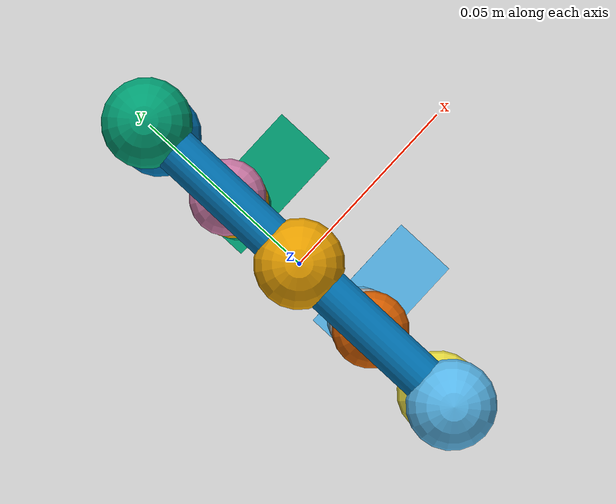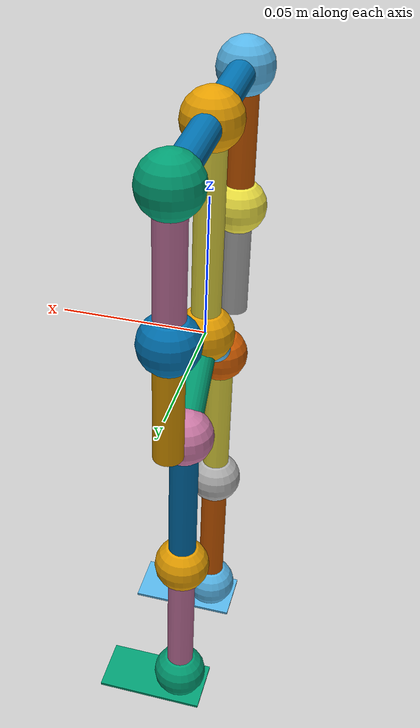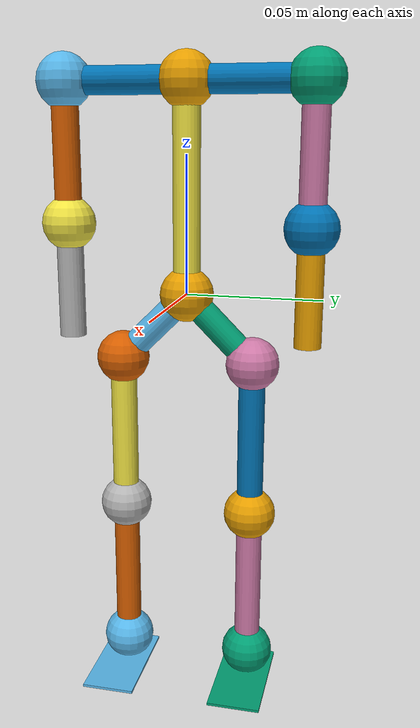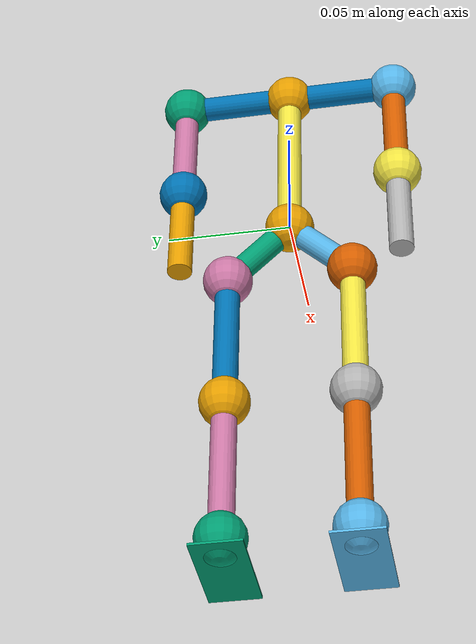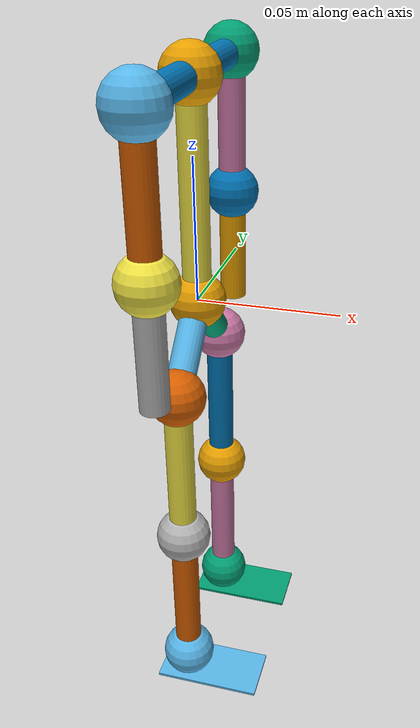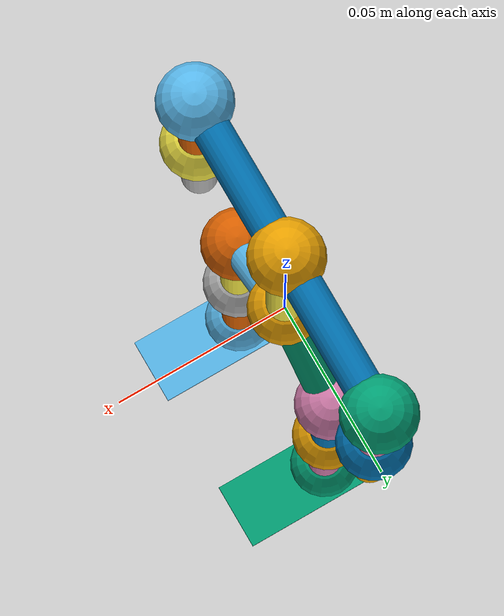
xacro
<?xml version="1.0"?>
<robot xmlns:xacro="http://www.ros.org/wiki/xacro" name="arm">

<xacro:property name="total_mass" value="70" />

<xacro:macro name="jointy" params="name offset">
    <link name="${name}">
        <visual>
            <geometry>
                <sphere radius="0.01"/>
            </geometry>
            <origin xyz="${offset}"/>
        </visual>
        <collision>
            <geometry>
                <sphere radius="0.01"/>
            </geometry>
            <origin xyz="${offset}"/>
        </collision>
    </link>
</xacro:macro>

<xacro:macro name="limb" params="name length offset rpy">
    <link name="${name}">
        <visual>
            <geometry>
                <cylinder radius="0.0050" length="${length}"/>
            </geometry>
            <origin xyz="${offset}" rpy="${rpy}"/>
        </visual>
        <collision>
            <geometry>
                <cylinder radius="0.0050" length="${length}"/>
            </geometry>
            <origin xyz="${offset}" rpy="${rpy}"/>
        </collision>
    </link>

</xacro:macro>

<xacro:macro name="affix" params="name parent child">
    <joint name="${name}" type="fixed">
        <parent link="${parent}"/>
        <child link="${child}"/>
    </joint>
</xacro:macro>

<xacro:macro name="revolve" params="name parent child hi lo axis offset">
    <joint name="${name}" type="revolute">
        <parent link="${parent}"/>
        <child link="${child}"/>
        <limit lower="${lo}" upper="${hi}" effort="20.0" velocity="20.0"/>
        <origin xyz="${offset}"/>
        <axis xyz="${axis}"/>
    </joint>
</xacro:macro>

<link name="base_link">
    <visual>
        <geometry>
            <sphere radius="0.01"/>
        </geometry>
    </visual>
    <collision>
        <geometry>
            <sphere radius="0.01"/>
        </geometry>
    </collision>
</link>

<link name="right_foot">
    <visual>
        <geometry>
            <box size="0.04 0.02 0.001"/>
        </geometry>
        <origin xyz=".01 0 -0.0075"/>
    </visual>
    <collision>
        <geometry>
            <box size="0.04 0.02 0.001"/>
        </geometry>
        <origin xyz=".01 0 -0.0075"/>
    </collision>
</link>

<link name="left_foot">
    <visual>
        <geometry>
            <box size="0.04 0.02 0.001"/>
        </geometry>
        <origin xyz=".01 0 -0.0075"/>
    </visual>
    <collision>
        <geometry>
            <box size="0.04 0.02 0.001"/>
        </geometry>
        <origin xyz=".01 0 -0.0075"/>
    </collision>
</link>

<!-- Limbs-->
<xacro:limb name="body" length=".075" offset="0 0 .03" rpy="0 0 0"/>
<xacro:limb name="traps" length=".075" offset="0 0 .075" rpy="${1.57079632679} 0 0"/>

<xacro:limb name="right_bicep" length=".035" offset="0 0 -.025" rpy="0 0 0"/>
<xacro:limb name="left_bicep" length=".035" offset="0 0 -.025" rpy="0 0 0"/>

<xacro:limb name="right_forearm" length=".035" offset="0 0 -.025" rpy="0 0 0"/>
<xacro:limb name="left_forearm" length=".035" offset="0 0 -.025" rpy="0 0 0"/>

<xacro:limb name="right_groin" length=".02" offset="0 -.012 -.012" rpy="-${0.785398} 0 0"/>
<xacro:limb name="left_groin" length=".02" offset="0 .012 -.012" rpy="${0.785398} 0 0"/>

<xacro:limb name="right_thigh" length=".05" offset="0 0 -.03" rpy="0 0 0"/>
<xacro:limb name="left_thigh" length=".05" offset="0 0 -.03" rpy="0 0 0"/>

<xacro:limb name="right_calf" length=".05" offset="0 0 -.03" rpy="0 0 0"/>
<xacro:limb name="left_calf" length=".05" offset="0 0 -.03" rpy="0 0 0"/>

<!-- Joint Balls-->
<xacro:jointy name="pelvis" offset="0 0 0"/>
<xacro:jointy name="chest" offset="0 0 .075"/>

<xacro:jointy name="right_shoulder" offset="0 -.045 .075"/>
<xacro:jointy name="left_shoulder" offset="0 .045 .075"/>

<xacro:jointy name="right_elbow" offset="0 0 -.05"/>
<xacro:jointy name="left_elbow" offset="0 0 -.05"/>

<xacro:jointy name="right_hip" offset="0 -.025 -.025"/>
<xacro:jointy name="left_hip" offset="0 .025 -.025"/>

<xacro:jointy name="right_knee" offset="0 0 -.06"/>
<xacro:jointy name="left_knee" offset="0 0 -.06"/>

<xacro:jointy name="right_ankle" offset="0 0 -.06"/>
<xacro:jointy name="left_ankle" offset="0 0 -.06"/>

<!-- Fixed Joints-->
<xacro:affix name="body_to_chest" parent="body" child="chest"/>

<xacro:affix name="right_shoulder_to_traps" parent="traps" child="right_shoulder"/>
<xacro:affix name="left_shoulder_to_traps" parent="traps" child="left_shoulder"/>

<xacro:affix name="right_bicep_to_elbow" parent="right_bicep" child="right_elbow"/>
<xacro:affix name="left_bicep_to_elbow" parent="left_bicep" child="left_elbow"/>

<xacro:affix name="pelvis_to_right_groin" parent="pelvis" child="right_groin"/>
<xacro:affix name="pelvis_to_left_groin" parent="pelvis" child="left_groin"/>

<xacro:affix name="right_groin_to_right_hip" parent="right_groin" child="right_hip"/>
<xacro:affix name="left_groin_to_left_hip" parent="left_groin" child="left_hip"/>

<xacro:affix name="right_thigh_to_right_knee" parent="right_thigh" child="right_knee"/>
<xacro:affix name="left_thigh_to_left_knee" parent="left_thigh" child="left_knee"/>

<xacro:affix name="right_calf_to_right_ankle" parent="right_calf" child="right_ankle"/>
<xacro:affix name="left_calf_to_left_ankle" parent="left_calf" child="left_ankle"/>

<!-- Revolute Joints-->
<xacro:revolve name="bend_body" parent="base_link" child="body" lo="-1.2" hi="1.2" axis="0 1 0" offset="0 0 0"/>
<xacro:revolve name="twist_lowbody" parent="base_link" child="pelvis" lo="-1.2" hi="1.2" axis="0 0 1" offset="0 0 0"/>
<xacro:revolve name="twist_shoulders" parent="chest" child="traps" lo="-1.2" hi="1.2" axis="0 0 1" offset="0 0 0"/>
<xacro:revolve name="right_shoulder_lateral" parent="right_shoulder" child="right_bicep" lo="-1.2" hi="1.2" axis="0 1 0" offset="0 -.045 .075"/>
<xacro:revolve name="left_shoulder_lateral" parent="left_shoulder" child="left_bicep" lo="-1.2" hi="1.2" axis="0 1 0" offset="0 .045 .075"/>
<xacro:revolve name="right_elbow_joint" parent="right_elbow" child="right_forearm" lo="-1.2" hi="0" axis="0 1 0" offset="0 0 -.05"/>
<xacro:revolve name="left_elbow_joint" parent="left_elbow" child="left_forearm" lo="-1.2" hi="0" axis="0 1 0" offset="0 0 -.05"/>
<xacro:revolve name="right_hip_flexor" parent="right_hip" child="right_thigh" lo="-1.2" hi="1.2" axis="0 1 0" offset="0 -.025 -.025"/>
<xacro:revolve name="left_hip_flexor" parent="left_hip" child="left_thigh" lo="-1.2" hi="1.2" axis="0 1 0" offset="0 .025 -.025"/>
<xacro:revolve name="right_knee_joint" parent="right_knee" child="right_calf" lo="0" hi="1.2" axis="0 1 0" offset="0 0 -.060"/>
<xacro:revolve name="left_knee_joint" parent="left_knee" child="left_calf" lo="0" hi="1.2" axis="0 1 0" offset="0 0 -.060"/>
<xacro:revolve name="right_ankle_joint" parent="right_ankle" child="right_foot" lo="-.75" hi=".76" axis="0 1 0" offset="0 0 -.060"/>
<xacro:revolve name="left_ankle_joint" parent="left_ankle" child="left_foot" lo="-.75" hi=".76" axis="0 1 0" offset="0 0 -.060"/>

</robot>
